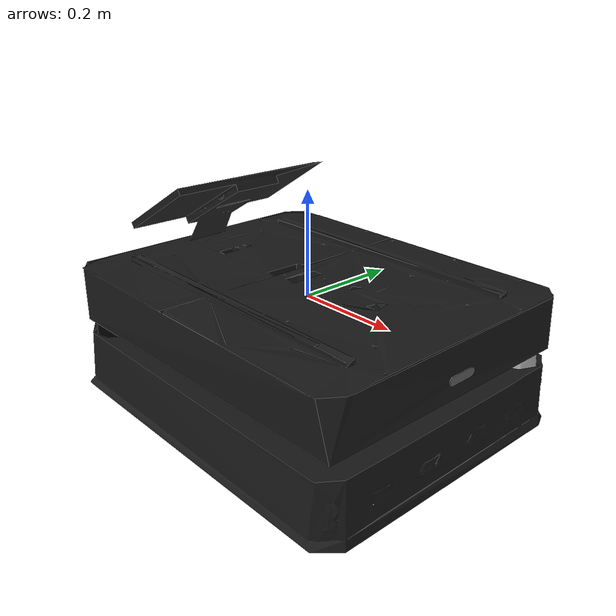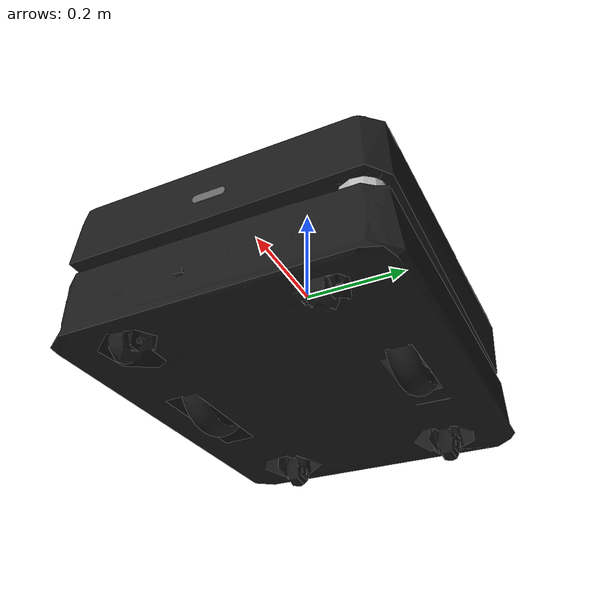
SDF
<?xml version="1.0"?>
<sdf version="1.4">
  <model name="beary_x">
    <pose>0.0 0.0 0.0 0.0 0.0 0.0</pose>

    <link name="base_footprint"/>

<!-- start beary_x_structure -->
    <joint name="base_joint" type="fixed">
      <parent>base_footprint</parent>
      <child>base_link</child>
      <pose>0 0 -0.220 0 0 0</pose>
    </joint>

    <link name="base_link">
      <inertial>
        <pose>0 0.000593325287443985 -0.220 0 0 0</pose>
        <inertia>
          <ixx>7.2397393e-01</ixx>
          <ixy>4.686399e-10</ixy>
          <ixz>-1.09525703e-08</ixz>
          <iyy>7.2397393e-01</iyy>
          <iyz>2.8582649e-09</iyz>
          <izz>6.53050163e-01</izz>
        </inertia>
        <mass>8.2573504e-01</mass>
      </inertial>

      <collision name="base_collision">
        <pose>0 0.000593325287443985 -0.220 0 0 0</pose>
        <geometry>
          <box>
            <size>0.705 0.576 0.05</size>
          </box>
        </geometry>
      </collision>

      <visual name="base_visual">
        <pose>0 0.000593325287443985 -0.220 0 0 0</pose>
        <geometry>
          <mesh>
            <uri>model://beary_x/meshes/base_link.dae</uri>
          </mesh>
        </geometry>
        <material>
          <ambient>0.1 0.1 0.1 1</ambient>
        </material>
      </visual>
    </link>
<!-- end beary_x_structure -->

<!-- start wheel_1 -->
    <joint name="wheel_left_joint" type="revolute">
      <parent>base_link</parent>
      <child>wheel_left_link</child>
      <pose>0 0.19775 -0.1460 -1.5708 0 0</pose>
      <axis>
        <xyz>0 0 1</xyz>
      </axis>
    </joint>

    <link name="wheel_left_link">
      <inertial>
        <pose>0 0.19775 -0.1460 -1.5708 0 0</pose>
        <inertia>
          <ixx>1.8158194e-03</ixx>
          <ixy>-9.3392e-12</ixy>
          <ixz>1.04909e-11</ixz>
          <iyy>3.2922126e-03</iyy>
          <iyz>5.75694e-11</iyz>
          <izz>1.8158194e-03</izz>
        </inertia>
        <mass>2.8498940e-02</mass>
      </inertial>

      <collision name="wheel_1_collision">
        <pose>0 0.19775 -0.1460 -1.5708 0 0</pose>
        <geometry>
          <cylinder>
            <radius>0.10</radius>
            <length>0.05</length>
          </cylinder>
        </geometry>
        <surface>
          <!-- This friction pamareter don't contain reliable data!! -->
          <friction>
            <ode>
              <mu>100000.0</mu>
              <mu2>100000.0</mu2>
              <fdir1>0 0 0</fdir1>
              <slip1>0.0</slip1>
              <slip2>0.0</slip2>
            </ode>
          </friction>
          <contact>
            <ode>
              <soft_cfm>0</soft_cfm>
              <soft_erp>0.2</soft_erp>
              <kp>1e+5</kp>
              <kd>1</kd>
              <max_vel>0.01</max_vel>
              <min_depth>0.001</min_depth>
            </ode>
          </contact>
        </surface>
      </collision>

      <visual name="wheel_1_visual">
        <pose>0 0.19775 -0.1460 -1.5708 0 0</pose>
        <geometry>
          <mesh>
            <uri>model://beary_x/meshes/wheel_left_link.dae</uri>
          </mesh>
        </geometry>
        <material>
          <ambient>0.1 0.1 0.1 1</ambient>
        </material>
      </visual>
    </link>
<!-- end wheel_1 -->

<!-- start wheel_2 -->
    <joint name="wheel_right_joint" type="revolute">
      <parent>base_link</parent>
      <child>wheel_right_link</child>
      <pose>0 -0.19775 -0.1460 -1.5708 0 0</pose>
      <axis>
        <xyz>0 0 1</xyz>
      </axis>
    </joint>

    <link name="wheel_right_link">
      <inertial>
        <pose>0 -0.19775 -0.1460 -1.5708 0 0</pose>
        <inertia>
          <ixx>1.8158194e-03</ixx>
          <ixy>-9.3392e-12</ixy>
          <ixz>1.04909e-11</ixz>
          <iyy>3.2922126e-03</iyy>
          <iyz>5.75694e-11</iyz>
          <izz>1.8158194e-03</izz>
        </inertia>
        <mass>2.8498940e-02</mass>
      </inertial>

      <collision name="wheel_2_collision">
        <pose>0 -0.19775 -0.1460 -1.5708 0 0</pose>
        <geometry>
          <cylinder>
            <radius>0.10</radius>
            <length>0.05</length>
          </cylinder>
        </geometry>
        <surface>
          <!-- This friction pamareter don't contain reliable data!! -->
          <friction>
            <ode>
              <mu>100000.0</mu>
              <mu2>100000.0</mu2>
              <fdir1>0 0 0</fdir1>
              <slip1>0.0</slip1>
              <slip2>0.0</slip2>
            </ode>
          </friction>
          <contact>
            <ode>
              <soft_cfm>0</soft_cfm>
              <soft_erp>0.2</soft_erp>
              <kp>1e+5</kp>
              <kd>1</kd>
              <max_vel>0.01</max_vel>
              <min_depth>0.001</min_depth>
            </ode>
          </contact>
        </surface>
      </collision>

      <visual name="wheel_2_visual">
        <pose>0 -0.19775 -0.1460 -1.5708 0 0</pose>
        <geometry>
          <mesh>
            <uri>model://beary_x/meshes/wheel_right_link.dae</uri>
          </mesh>
        </geometry>
        <material>
          <ambient>0.1 0.1 0.1 1</ambient>
        </material>
      </visual>
    </link>
<!-- end wheel_2 -->

<!-- start imu -->
    <joint name="imu_joint" type="fixed">
      <parent>base_link</parent>
      <child>imu_link</child>
      <pose>-0.20 0 -0.150 0 0 -1.5708</pose>
      <axis>
        <xyz>0 0 1</xyz>
      </axis>
    </joint>

    <link name="imu_link">
      <sensor name="imu" type="imu">
        <always_on>true</always_on>
        <update_rate>200</update_rate>
        <imu>
          <angular_velocity>
            <x>
              <noise type="gaussian">
                <mean>0.0</mean>
                <stddev>2e-4</stddev>
              </noise>
            </x>
            <y>
              <noise type="gaussian">
                <mean>0.0</mean>
                <stddev>2e-4</stddev>
              </noise>
            </y>
            <z>
              <noise type="gaussian">
                <mean>0.0</mean>
                <stddev>2e-4</stddev>
              </noise>
            </z>
          </angular_velocity>
          <linear_acceleration>
            <x>
              <noise type="gaussian">
                <mean>0.0</mean>
                <stddev>1.7e-2</stddev>
              </noise>
            </x>
            <y>
              <noise type="gaussian">
                <mean>0.0</mean>
                <stddev>1.7e-2</stddev>
              </noise>
            </y>
            <z>
              <noise type="gaussian">
                <mean>0.0</mean>
                <stddev>1.7e-2</stddev>
              </noise>
            </z>
          </linear_acceleration>
        </imu>
        <plugin name="bearyx_imu" filename="libgazebo_ros_imu_sensor.so">
          <ros>
            <remapping>~/out:=imu</remapping>
          </ros>
        </plugin>
      </sensor>
    </link>
<!-- end imu -->

<!-- start scan 1-->
    <joint name="lidar_joint_1" type="fixed">
      <parent>base_link</parent>
      <child>base_scan_1</child>
      <pose>0.3 0.235 -0.09797 0 0 0</pose>
      <axis>
        <xyz>0 0 0</xyz>
      </axis>
    </joint>

    <link name="base_scan_1">
      <inertial>
        <pose>0.3 0.235 -0.09797 0 0 0</pose>
        <inertia>
          <ixx>3.08343933333962E-08</ixx>
          <ixy>-2.78438473410044E-09</ixy>
          <ixz>-7.56893245046912E-10</ixz>
          <iyy>3.08304806407341E-08</iyy>
          <iyz>-7.57864800840152E-10</iyz>
          <izz>4.50852856571892E-08</izz>
        </inertia>
        <mass>3.74307663679103E-05</mass>
      </inertial>

      <collision name="lidar_sensor_collision_1">
        <pose>0.3 0.235 -0.097970 0 0</pose>
        <geometry>
          <cylinder>
            <radius>0.0375</radius>
            <length>0.040</length>
          </cylinder>
        </geometry>
      </collision>

      <visual name="lidar_sensor_visual_1">
        <pose>0.3 0.235 -0.09797 0 0 0</pose>
        <geometry>
          <mesh>
            <uri>model://beary_x/meshes/scan_1.dae</uri>
          </mesh>
        </geometry>
      </visual>

      <sensor name="hls_lfcd_lds_1" type="ray">
        <always_on>true</always_on>
        <visualize>true</visualize>
        <pose>0.3 0.235 -0.09 0 0 0</pose>
        <update_rate>5</update_rate>
        <ray>
          <scan>
            <horizontal>
              <samples>360</samples>
              <resolution>1.000000</resolution>
              <min_angle>-1.57</min_angle>
              <max_angle>3.14</max_angle>
            </horizontal>
          </scan>
          <range>
            <min>0.10</min>
            <max>30.0</max>
            <resolution>0.015000</resolution>
          </range>
          <noise>
            <type>gaussian</type>
            <mean>0.0</mean>
            <stddev>0.01</stddev>
          </noise>
        </ray>
        <plugin name="bearyx_laserscan_1" filename="libgazebo_ros_ray_sensor.so">
          <ros>
            <remapping>~/out:=scan_1</remapping>
          </ros>
          <output_type>sensor_msgs/LaserScan</output_type>
          <frame_name>base_scan_1</frame_name>
        </plugin>
      </sensor>
    </link>
<!-- end scan 1-->

<!-- start scan 2-->
    <joint name="lidar_joint_2" type="fixed">
      <parent>base_link</parent>
      <child>base_scan_2</child>
      <pose>-0.3 -0.235 -0.09797 0 0 0</pose>
      <axis>
        <xyz>0 0 0</xyz>
      </axis>
    </joint>

    <link name="base_scan_2">
      <inertial>
        <pose>-0.3 -0.235 -0.09797 0 0 0</pose>
        <inertia>
          <ixx>3.08343933332249E-08</ixx>
          <ixy>-2.7843847341003E-09</ixy>
          <ixz>7.56893245050378E-10</ixz>
          <iyy>3.08304806405632E-08</iyy>
          <iyz>7.57864800841837E-10</iyz>
          <izz>4.508528565719E-08</izz>
        </inertia>
        <mass>3.74307663679113E-05</mass>
      </inertial>

      <collision name="lidar_sensor_collision_2">
        <geometry>
          <cylinder>
            <radius>0.0375</radius>
            <length>0.040</length>
          </cylinder>
        </geometry>
      </collision>

      <visual name="lidar_sensor_visual_2">
        <pose>-0.3 -0.235 -0.09797 0 0 0</pose>
        <geometry>
          <mesh>
            <uri>model://beary_x/meshes/scan_2.dae</uri>
          </mesh>
        </geometry>
      </visual>

      <sensor name="hls_lfcd_lds_2" type="ray">
        <always_on>true</always_on>
        <visualize>true</visualize>
        <pose>-0.3 -0.235 -0.09 0 0 0</pose>
        <update_rate>5</update_rate>
        <ray>
          <scan>
            <horizontal>
              <samples>360</samples>
              <resolution>1.000000</resolution>
              <min_angle>1.57</min_angle>
              <max_angle>6.28</max_angle>
            </horizontal>
          </scan>
          <range>
            <min>0.10</min>
            <max>30.0</max>
            <resolution>0.015000</resolution>
          </range>
          <noise>
            <type>gaussian</type>
            <mean>0.0</mean>
            <stddev>0.01</stddev>
          </noise>
        </ray>
        <plugin name="bearyx_laserscan_2" filename="libgazebo_ros_ray_sensor.so">
          <ros>
            <remapping>~/out:=scan_2</remapping>
          </ros>
          <output_type>sensor_msgs/LaserScan</output_type>
          <frame_name>base_scan_2</frame_name>
        </plugin>
      </sensor>
    </link>
<!-- end scan 2-->

<!-- start camera -->
    <joint name="camera_joint" type="fixed">
      <parent>base_link</parent>
      <child>camera_link</child>
      <pose>0.355 0 -0.0247 0 0 0</pose>
      <axis>
        <xyz>0 0 0</xyz>
      </axis>
    </joint>

    <link name="camera_link">
      <inertial>
        <pose>0.355 0 -0.0247 0 0 0</pose>
        <inertia>
          <ixx>0.001</ixx>
          <ixy>0.000</ixy>
          <ixz>0.000</ixz>
          <iyy>0.001</iyy>
          <iyz>0.000</iyz>
          <izz>0.001</izz>
        </inertia>
        <mass>1.4479147974995E-06</mass>
      </inertial>

      <visual name="camera_visual">
        <pose>0.355 0 -0.0247 0 0 0</pose>
        <geometry>
          <mesh>
            <uri>model://beary_x/meshes/camera3d_link.dae</uri>
          </mesh>
        </geometry>
        <material>
          <ambient>0.4 0.4 0.4 1</ambient>
        </material>
      </visual>

      <sensor name="camera" type="camera">
        <pose>0.355 0 -0.0247 0 0 0</pose>
        <always_on>true</always_on>
        <visualize>true</visualize>
        <update_rate>30</update_rate>
        <camera name="picam">
          <horizontal_fov>1.2391837689</horizontal_fov>
          <image>
              <width>640</width>
              <height>480</height>
              <format>R8G8B8</format>
          </image>
          <clip>
              <near>0.03</near>
              <far>100</far>
          </clip>
          <noise>
            <type>gaussian</type>
            <mean>0.0</mean>
            <stddev>0.007</stddev>
          </noise>
        </camera>
          <plugin name="camera_driver" filename="libgazebo_ros_camera.so">
            <ros>
            </ros>
          </plugin>
      </sensor>
    </link>
<!-- end camera -->

    <plugin name="bearyx_controller" filename="libgazebo_ros_diff_drive.so">

      <ros>
      </ros>

      <update_rate>30</update_rate>

      <!-- wheels -->
      <left_joint>wheel_left_joint</left_joint>
      <right_joint>wheel_right_joint</right_joint>

      <!-- kinematics -->
      <wheel_separation>0.19975</wheel_separation>
      <wheel_diameter>0.200</wheel_diameter>

      <!-- limits -->
      <max_wheel_torque>20</max_wheel_torque>
      <max_wheel_acceleration>1.0</max_wheel_acceleration>

      <command_topic>cmd_vel</command_topic>

      <!-- output -->
      <publish_odom>true</publish_odom>
      <publish_odom_tf>true</publish_odom_tf>
      <publish_wheel_tf>false</publish_wheel_tf>

      <odometry_topic>odom</odometry_topic>
      <odometry_frame>odom</odometry_frame>
      <robot_base_frame>base_footprint</robot_base_frame>

    </plugin>

    <plugin name="bearyx_joint_state" filename="libgazebo_ros_joint_state_publisher.so">
      <ros>
        <remapping>~/out:=joint_states</remapping>
      </ros>
      <update_rate>30</update_rate>
      <joint_name>wheel_left_joint</joint_name>
      <joint_name>wheel_right_joint</joint_name>
    </plugin>

  </model>
</sdf>
